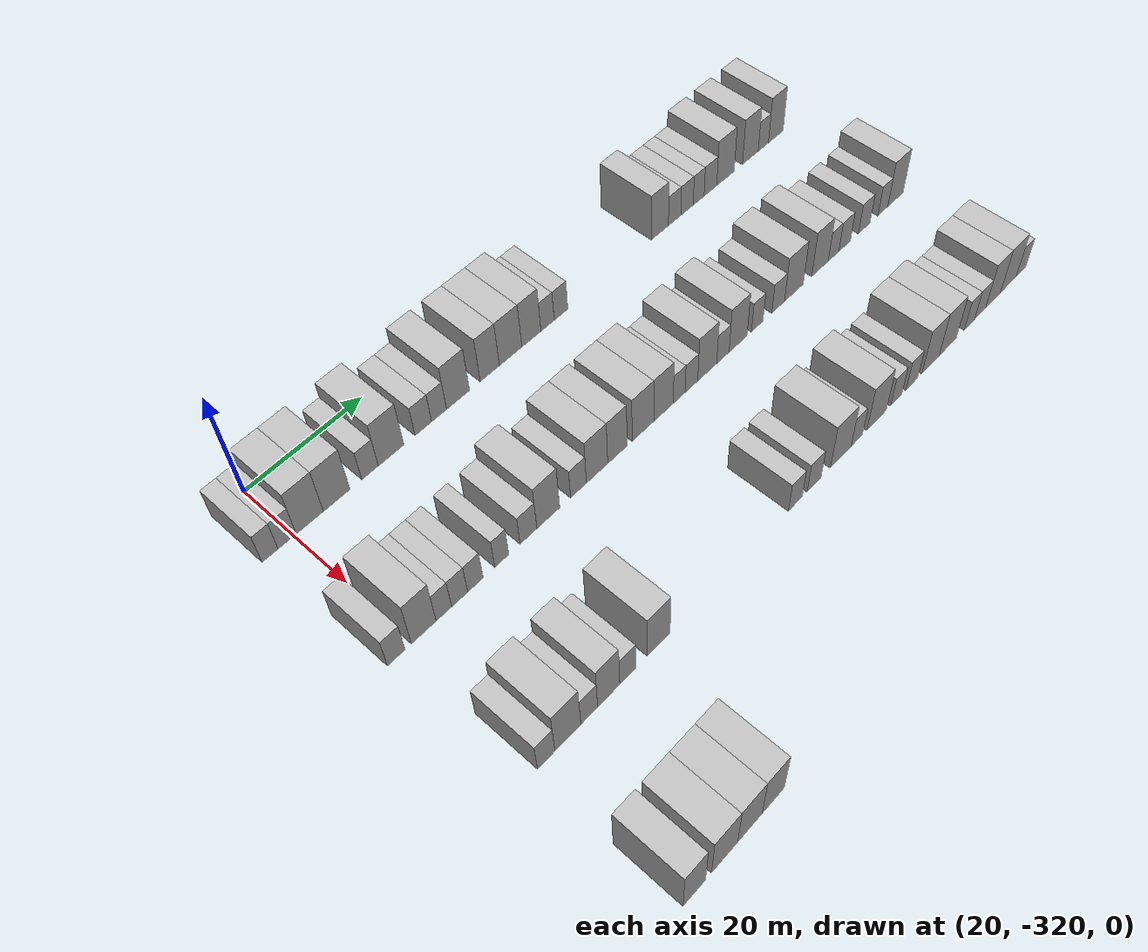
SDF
<sdf version="1.6">
 <world name="default">
  <model name="building_15">
   <static>1</static>
   <pose>25.0000 -323.8361 0 0.000000 0.000000 0.000000</pose>
   <link name="link">
    <pose>0 0 3.00 0 0 0</pose>
    <collision name="collision"><geometry><box><size>10.0000 2.5268 6.0000</size></box></geometry></collision>
    <visual name="visual">
     <cast_shadows>0</cast_shadows>
     <geometry><box><size>10.0000 2.5268 6.0000</size></box></geometry>
     <material>
      <script>
       <uri>model://HANNAS_wall/materials/scripts</uri>
       <uri>model://HANNAS_wall/materials/textures</uri>
       <name>vrc/HANNAS_wall</name>
      </script>
     </material>
    </visual>
   </link>
  </model>
  <model name="building_16">
   <static>1</static>
   <pose>25.0000 -321.1197 0 0.000000 0.000000 0.000000</pose>
   <link name="link">
    <pose>0 0 3.00 0 0 0</pose>
    <collision name="collision"><geometry><box><size>10.0000 2.9060 6.0000</size></box></geometry></collision>
    <visual name="visual">
     <cast_shadows>0</cast_shadows>
     <geometry><box><size>10.0000 2.9060 6.0000</size></box></geometry>
     <material>
      <script>
       <uri>model://HANNAS_wall/materials/scripts</uri>
       <uri>model://HANNAS_wall/materials/textures</uri>
       <name>vrc/HANNAS_wall</name>
      </script>
     </material>
    </visual>
   </link>
  </model>
  <model name="building_17">
   <static>1</static>
   <pose>25.0000 -317.4488 0 0.000000 0.000000 0.000000</pose>
   <link name="link">
    <pose>0 0 4.50 0 0 0</pose>
    <collision name="collision"><geometry><box><size>10.0000 4.4359 9.0000</size></box></geometry></collision>
    <visual name="visual">
     <cast_shadows>0</cast_shadows>
     <geometry><box><size>10.0000 4.4359 9.0000</size></box></geometry>
     <material>
      <script>
       <uri>model://HANNAS_wall/materials/scripts</uri>
       <uri>model://HANNAS_wall/materials/textures</uri>
       <name>vrc/HANNAS_wall</name>
      </script>
     </material>
    </visual>
   </link>
  </model>
  <model name="building_18">
   <static>1</static>
   <pose>25.0000 -313.0124 0 0.000000 0.000000 0.000000</pose>
   <link name="link">
    <pose>0 0 4.50 0 0 0</pose>
    <collision name="collision"><geometry><box><size>10.0000 4.4369 9.0000</size></box></geometry></collision>
    <visual name="visual">
     <cast_shadows>0</cast_shadows>
     <geometry><box><size>10.0000 4.4369 9.0000</size></box></geometry>
     <material>
      <script>
       <uri>model://HANNAS_wall/materials/scripts</uri>
       <uri>model://HANNAS_wall/materials/textures</uri>
       <name>vrc/HANNAS_wall</name>
      </script>
     </material>
    </visual>
   </link>
  </model>
  <model name="building_19">
   <static>1</static>
   <pose>25.0000 -307.3761 0 0.000000 0.000000 0.000000</pose>
   <link name="link">
    <pose>0 0 3.00 0 0 0</pose>
    <collision name="collision"><geometry><box><size>10.0000 2.8357 6.0000</size></box></geometry></collision>
    <visual name="visual">
     <cast_shadows>0</cast_shadows>
     <geometry><box><size>10.0000 2.8357 6.0000</size></box></geometry>
     <material>
      <script>
       <uri>model://HANNAS_wall/materials/scripts</uri>
       <uri>model://HANNAS_wall/materials/textures</uri>
       <name>vrc/HANNAS_wall</name>
      </script>
     </material>
    </visual>
   </link>
  </model>
  <model name="building_20">
   <static>1</static>
   <pose>25.0000 -303.7380 0 0.000000 0.000000 0.000000</pose>
   <link name="link">
    <pose>0 0 4.50 0 0 0</pose>
    <collision name="collision"><geometry><box><size>10.0000 4.4406 9.0000</size></box></geometry></collision>
    <visual name="visual">
     <cast_shadows>0</cast_shadows>
     <geometry><box><size>10.0000 4.4406 9.0000</size></box></geometry>
     <material>
      <script>
       <uri>model://HANNAS_wall/materials/scripts</uri>
       <uri>model://HANNAS_wall/materials/textures</uri>
       <name>vrc/HANNAS_wall</name>
      </script>
     </material>
    </visual>
   </link>
  </model>
  <model name="building_21">
   <static>1</static>
   <pose>25.0000 -298.0272 0 0.000000 0.000000 0.000000</pose>
   <link name="link">
    <pose>0 0 3.00 0 0 0</pose>
    <collision name="collision"><geometry><box><size>10.0000 2.9811 6.0000</size></box></geometry></collision>
    <visual name="visual">
     <cast_shadows>0</cast_shadows>
     <geometry><box><size>10.0000 2.9811 6.0000</size></box></geometry>
     <material>
      <script>
       <uri>model://HANNAS_wall/materials/scripts</uri>
       <uri>model://HANNAS_wall/materials/textures</uri>
       <name>vrc/HANNAS_wall</name>
      </script>
     </material>
    </visual>
   </link>
  </model>
  <model name="building_22">
   <static>1</static>
   <pose>25.0000 -295.1833 0 0.000000 0.000000 0.000000</pose>
   <link name="link">
    <pose>0 0 3.00 0 0 0</pose>
    <collision name="collision"><geometry><box><size>10.0000 2.7067 6.0000</size></box></geometry></collision>
    <visual name="visual">
     <cast_shadows>0</cast_shadows>
     <geometry><box><size>10.0000 2.7067 6.0000</size></box></geometry>
     <material>
      <script>
       <uri>model://HANNAS_wall/materials/scripts</uri>
       <uri>model://HANNAS_wall/materials/textures</uri>
       <name>vrc/HANNAS_wall</name>
      </script>
     </material>
    </visual>
   </link>
  </model>
  <model name="building_23">
   <static>1</static>
   <pose>25.0000 -291.6937 0 0.000000 0.000000 0.000000</pose>
   <link name="link">
    <pose>0 0 4.50 0 0 0</pose>
    <collision name="collision"><geometry><box><size>10.0000 4.2725 9.0000</size></box></geometry></collision>
    <visual name="visual">
     <cast_shadows>0</cast_shadows>
     <geometry><box><size>10.0000 4.2725 9.0000</size></box></geometry>
     <material>
      <script>
       <uri>model://HANNAS_wall/materials/scripts</uri>
       <uri>model://HANNAS_wall/materials/textures</uri>
       <name>vrc/HANNAS_wall</name>
      </script>
     </material>
    </visual>
   </link>
  </model>
  <model name="building_24">
   <static>1</static>
   <pose>25.0000 -285.7296 0 0.000000 0.000000 0.000000</pose>
   <link name="link">
    <pose>0 0 4.50 0 0 0</pose>
    <collision name="collision"><geometry><box><size>10.0000 3.6557 9.0000</size></box></geometry></collision>
    <visual name="visual">
     <cast_shadows>0</cast_shadows>
     <geometry><box><size>10.0000 3.6557 9.0000</size></box></geometry>
     <material>
      <script>
       <uri>model://HANNAS_wall/materials/scripts</uri>
       <uri>model://HANNAS_wall/materials/textures</uri>
       <name>vrc/HANNAS_wall</name>
      </script>
     </material>
    </visual>
   </link>
  </model>
  <model name="building_25">
   <static>1</static>
   <pose>25.0000 -281.7193 0 0.000000 0.000000 0.000000</pose>
   <link name="link">
    <pose>0 0 4.50 0 0 0</pose>
    <collision name="collision"><geometry><box><size>10.0000 4.3651 9.0000</size></box></geometry></collision>
    <visual name="visual">
     <cast_shadows>0</cast_shadows>
     <geometry><box><size>10.0000 4.3651 9.0000</size></box></geometry>
     <material>
      <script>
       <uri>model://HANNAS_wall/materials/scripts</uri>
       <uri>model://HANNAS_wall/materials/textures</uri>
       <name>vrc/HANNAS_wall</name>
      </script>
     </material>
    </visual>
   </link>
  </model>
  <model name="building_26">
   <static>1</static>
   <pose>25.0000 -277.6539 0 0.000000 0.000000 0.000000</pose>
   <link name="link">
    <pose>0 0 4.50 0 0 0</pose>
    <collision name="collision"><geometry><box><size>10.0000 3.7657 9.0000</size></box></geometry></collision>
    <visual name="visual">
     <cast_shadows>0</cast_shadows>
     <geometry><box><size>10.0000 3.7657 9.0000</size></box></geometry>
     <material>
      <script>
       <uri>model://HANNAS_wall/materials/scripts</uri>
       <uri>model://HANNAS_wall/materials/textures</uri>
       <name>vrc/HANNAS_wall</name>
      </script>
     </material>
    </visual>
   </link>
  </model>
  <model name="building_27">
   <static>1</static>
   <pose>25.0000 -274.4443 0 0.000000 0.000000 0.000000</pose>
   <link name="link">
    <pose>0 0 3.00 0 0 0</pose>
    <collision name="collision"><geometry><box><size>10.0000 2.6534 6.0000</size></box></geometry></collision>
    <visual name="visual">
     <cast_shadows>0</cast_shadows>
     <geometry><box><size>10.0000 2.6534 6.0000</size></box></geometry>
     <material>
      <script>
       <uri>model://HANNAS_wall/materials/scripts</uri>
       <uri>model://HANNAS_wall/materials/textures</uri>
       <name>vrc/HANNAS_wall</name>
      </script>
     </material>
    </visual>
   </link>
  </model>
  <model name="building_28">
   <static>1</static>
   <pose>25.0000 -271.7349 0 0.000000 0.000000 0.000000</pose>
   <link name="link">
    <pose>0 0 3.00 0 0 0</pose>
    <collision name="collision"><geometry><box><size>10.0000 2.7654 6.0000</size></box></geometry></collision>
    <visual name="visual">
     <cast_shadows>0</cast_shadows>
     <geometry><box><size>10.0000 2.7654 6.0000</size></box></geometry>
     <material>
      <script>
       <uri>model://HANNAS_wall/materials/scripts</uri>
       <uri>model://HANNAS_wall/materials/textures</uri>
       <name>vrc/HANNAS_wall</name>
      </script>
     </material>
    </visual>
   </link>
  </model>
  <model name="building_29">
   <static>1</static>
   <pose>25.0000 -250.6483 0 0.000000 0.000000 0.000000</pose>
   <link name="link">
    <pose>0 0 4.50 0 0 0</pose>
    <collision name="collision"><geometry><box><size>10.0000 3.8026 9.0000</size></box></geometry></collision>
    <visual name="visual">
     <cast_shadows>0</cast_shadows>
     <geometry><box><size>10.0000 3.8026 9.0000</size></box></geometry>
     <material>
      <script>
       <uri>model://HANNAS_wall/materials/scripts</uri>
       <uri>model://HANNAS_wall/materials/textures</uri>
       <name>vrc/HANNAS_wall</name>
      </script>
     </material>
    </visual>
   </link>
  </model>
  <model name="building_30">
   <static>1</static>
   <pose>25.0000 -247.3433 0 0.000000 0.000000 0.000000</pose>
   <link name="link">
    <pose>0 0 3.00 0 0 0</pose>
    <collision name="collision"><geometry><box><size>10.0000 2.8074 6.0000</size></box></geometry></collision>
    <visual name="visual">
     <cast_shadows>0</cast_shadows>
     <geometry><box><size>10.0000 2.8074 6.0000</size></box></geometry>
     <material>
      <script>
       <uri>model://HANNAS_wall/materials/scripts</uri>
       <uri>model://HANNAS_wall/materials/textures</uri>
       <name>vrc/HANNAS_wall</name>
      </script>
     </material>
    </visual>
   </link>
  </model>
  <model name="building_31">
   <static>1</static>
   <pose>25.0000 -244.5108 0 0.000000 0.000000 0.000000</pose>
   <link name="link">
    <pose>0 0 3.00 0 0 0</pose>
    <collision name="collision"><geometry><box><size>10.0000 2.8575 6.0000</size></box></geometry></collision>
    <visual name="visual">
     <cast_shadows>0</cast_shadows>
     <geometry><box><size>10.0000 2.8575 6.0000</size></box></geometry>
     <material>
      <script>
       <uri>model://HANNAS_wall/materials/scripts</uri>
       <uri>model://HANNAS_wall/materials/textures</uri>
       <name>vrc/HANNAS_wall</name>
      </script>
     </material>
    </visual>
   </link>
  </model>
  <model name="building_32">
   <static>1</static>
   <pose>25.0000 -241.8148 0 0.000000 0.000000 0.000000</pose>
   <link name="link">
    <pose>0 0 3.00 0 0 0</pose>
    <collision name="collision"><geometry><box><size>10.0000 2.5343 6.0000</size></box></geometry></collision>
    <visual name="visual">
     <cast_shadows>0</cast_shadows>
     <geometry><box><size>10.0000 2.5343 6.0000</size></box></geometry>
     <material>
      <script>
       <uri>model://HANNAS_wall/materials/scripts</uri>
       <uri>model://HANNAS_wall/materials/textures</uri>
       <name>vrc/HANNAS_wall</name>
      </script>
     </material>
    </visual>
   </link>
  </model>
  <model name="building_33">
   <static>1</static>
   <pose>25.0000 -239.0710 0 0.000000 0.000000 0.000000</pose>
   <link name="link">
    <pose>0 0 3.00 0 0 0</pose>
    <collision name="collision"><geometry><box><size>10.0000 2.9532 6.0000</size></box></geometry></collision>
    <visual name="visual">
     <cast_shadows>0</cast_shadows>
     <geometry><box><size>10.0000 2.9532 6.0000</size></box></geometry>
     <material>
      <script>
       <uri>model://HANNAS_wall/materials/scripts</uri>
       <uri>model://HANNAS_wall/materials/textures</uri>
       <name>vrc/HANNAS_wall</name>
      </script>
     </material>
    </visual>
   </link>
  </model>
  <model name="building_34">
   <static>1</static>
   <pose>25.0000 -235.5014 0 0.000000 0.000000 0.000000</pose>
   <link name="link">
    <pose>0 0 4.50 0 0 0</pose>
    <collision name="collision"><geometry><box><size>10.0000 4.1860 9.0000</size></box></geometry></collision>
    <visual name="visual">
     <cast_shadows>0</cast_shadows>
     <geometry><box><size>10.0000 4.1860 9.0000</size></box></geometry>
     <material>
      <script>
       <uri>model://HANNAS_wall/materials/scripts</uri>
       <uri>model://HANNAS_wall/materials/textures</uri>
       <name>vrc/HANNAS_wall</name>
      </script>
     </material>
    </visual>
   </link>
  </model>
  <model name="building_35">
   <static>1</static>
   <pose>25.0000 -229.4936 0 0.000000 0.000000 0.000000</pose>
   <link name="link">
    <pose>0 0 4.50 0 0 0</pose>
    <collision name="collision"><geometry><box><size>10.0000 3.8298 9.0000</size></box></geometry></collision>
    <visual name="visual">
     <cast_shadows>0</cast_shadows>
     <geometry><box><size>10.0000 3.8298 9.0000</size></box></geometry>
     <material>
      <script>
       <uri>model://HANNAS_wall/materials/scripts</uri>
       <uri>model://HANNAS_wall/materials/textures</uri>
       <name>vrc/HANNAS_wall</name>
      </script>
     </material>
    </visual>
   </link>
  </model>
  <model name="building_36">
   <static>1</static>
   <pose>25.0000 -226.3007 0 0.000000 0.000000 0.000000</pose>
   <link name="link">
    <pose>0 0 3.00 0 0 0</pose>
    <collision name="collision"><geometry><box><size>10.0000 2.5559 6.0000</size></box></geometry></collision>
    <visual name="visual">
     <cast_shadows>0</cast_shadows>
     <geometry><box><size>10.0000 2.5559 6.0000</size></box></geometry>
     <material>
      <script>
       <uri>model://HANNAS_wall/materials/scripts</uri>
       <uri>model://HANNAS_wall/materials/textures</uri>
       <name>vrc/HANNAS_wall</name>
      </script>
     </material>
    </visual>
   </link>
  </model>
  <model name="building_37">
   <static>1</static>
   <pose>25.0000 -223.1978 0 0.000000 0.000000 0.000000</pose>
   <link name="link">
    <pose>0 0 4.50 0 0 0</pose>
    <collision name="collision"><geometry><box><size>10.0000 3.6500 9.0000</size></box></geometry></collision>
    <visual name="visual">
     <cast_shadows>0</cast_shadows>
     <geometry><box><size>10.0000 3.6500 9.0000</size></box></geometry>
     <material>
      <script>
       <uri>model://HANNAS_wall/materials/scripts</uri>
       <uri>model://HANNAS_wall/materials/textures</uri>
       <name>vrc/HANNAS_wall</name>
      </script>
     </material>
    </visual>
   </link>
  </model>
  <model name="building_199">
   <static>1</static>
   <pose>47.0000 -322.7695 0 0.000000 0.000000 0.000000</pose>
   <link name="link">
    <pose>0 0 3.00 0 0 0</pose>
    <collision name="collision"><geometry><box><size>10.0000 2.8136 6.0000</size></box></geometry></collision>
    <visual name="visual">
     <cast_shadows>0</cast_shadows>
     <geometry><box><size>10.0000 2.8136 6.0000</size></box></geometry>
     <material>
      <script>
       <uri>model://HANNAS_wall/materials/scripts</uri>
       <uri>model://HANNAS_wall/materials/textures</uri>
       <name>vrc/HANNAS_wall</name>
      </script>
     </material>
    </visual>
   </link>
  </model>
  <model name="building_200">
   <static>1</static>
   <pose>47.0000 -318.3534 0 0.000000 0.000000 0.000000</pose>
   <link name="link">
    <pose>0 0 4.50 0 0 0</pose>
    <collision name="collision"><geometry><box><size>10.0000 4.0186 9.0000</size></box></geometry></collision>
    <visual name="visual">
     <cast_shadows>0</cast_shadows>
     <geometry><box><size>10.0000 4.0186 9.0000</size></box></geometry>
     <material>
      <script>
       <uri>model://HANNAS_wall/materials/scripts</uri>
       <uri>model://HANNAS_wall/materials/textures</uri>
       <name>vrc/HANNAS_wall</name>
      </script>
     </material>
    </visual>
   </link>
  </model>
  <model name="building_201">
   <static>1</static>
   <pose>47.0000 -315.0642 0 0.000000 0.000000 0.000000</pose>
   <link name="link">
    <pose>0 0 3.00 0 0 0</pose>
    <collision name="collision"><geometry><box><size>10.0000 2.5597 6.0000</size></box></geometry></collision>
    <visual name="visual">
     <cast_shadows>0</cast_shadows>
     <geometry><box><size>10.0000 2.5597 6.0000</size></box></geometry>
     <material>
      <script>
       <uri>model://HANNAS_wall/materials/scripts</uri>
       <uri>model://HANNAS_wall/materials/textures</uri>
       <name>vrc/HANNAS_wall</name>
      </script>
     </material>
    </visual>
   </link>
  </model>
  <model name="building_202">
   <static>1</static>
   <pose>47.0000 -312.4385 0 0.000000 0.000000 0.000000</pose>
   <link name="link">
    <pose>0 0 3.00 0 0 0</pose>
    <collision name="collision"><geometry><box><size>10.0000 2.6918 6.0000</size></box></geometry></collision>
    <visual name="visual">
     <cast_shadows>0</cast_shadows>
     <geometry><box><size>10.0000 2.6918 6.0000</size></box></geometry>
     <material>
      <script>
       <uri>model://HANNAS_wall/materials/scripts</uri>
       <uri>model://HANNAS_wall/materials/textures</uri>
       <name>vrc/HANNAS_wall</name>
      </script>
     </material>
    </visual>
   </link>
  </model>
  <model name="building_203">
   <static>1</static>
   <pose>47.0000 -309.7807 0 0.000000 0.000000 0.000000</pose>
   <link name="link">
    <pose>0 0 3.00 0 0 0</pose>
    <collision name="collision"><geometry><box><size>10.0000 2.6238 6.0000</size></box></geometry></collision>
    <visual name="visual">
     <cast_shadows>0</cast_shadows>
     <geometry><box><size>10.0000 2.6238 6.0000</size></box></geometry>
     <material>
      <script>
       <uri>model://HANNAS_wall/materials/scripts</uri>
       <uri>model://HANNAS_wall/materials/textures</uri>
       <name>vrc/HANNAS_wall</name>
      </script>
     </material>
    </visual>
   </link>
  </model>
  <model name="building_204">
   <static>1</static>
   <pose>47.0000 -305.2591 0 0.000000 0.000000 0.000000</pose>
   <link name="link">
    <pose>0 0 3.00 0 0 0</pose>
    <collision name="collision"><geometry><box><size>10.0000 2.4195 6.0000</size></box></geometry></collision>
    <visual name="visual">
     <cast_shadows>0</cast_shadows>
     <geometry><box><size>10.0000 2.4195 6.0000</size></box></geometry>
     <material>
      <script>
       <uri>model://HANNAS_wall/materials/scripts</uri>
       <uri>model://HANNAS_wall/materials/textures</uri>
       <name>vrc/HANNAS_wall</name>
      </script>
     </material>
    </visual>
   </link>
  </model>
  <model name="building_205">
   <static>1</static>
   <pose>47.0000 -300.5561 0 0.000000 0.000000 0.000000</pose>
   <link name="link">
    <pose>0 0 3.00 0 0 0</pose>
    <collision name="collision"><geometry><box><size>10.0000 2.9864 6.0000</size></box></geometry></collision>
    <visual name="visual">
     <cast_shadows>0</cast_shadows>
     <geometry><box><size>10.0000 2.9864 6.0000</size></box></geometry>
     <material>
      <script>
       <uri>model://HANNAS_wall/materials/scripts</uri>
       <uri>model://HANNAS_wall/materials/textures</uri>
       <name>vrc/HANNAS_wall</name>
      </script>
     </material>
    </visual>
   </link>
  </model>
  <model name="building_206">
   <static>1</static>
   <pose>47.0000 -296.9911 0 0.000000 0.000000 0.000000</pose>
   <link name="link">
    <pose>0 0 4.50 0 0 0</pose>
    <collision name="collision"><geometry><box><size>10.0000 4.1438 9.0000</size></box></geometry></collision>
    <visual name="visual">
     <cast_shadows>0</cast_shadows>
     <geometry><box><size>10.0000 4.1438 9.0000</size></box></geometry>
     <material>
      <script>
       <uri>model://HANNAS_wall/materials/scripts</uri>
       <uri>model://HANNAS_wall/materials/textures</uri>
       <name>vrc/HANNAS_wall</name>
      </script>
     </material>
    </visual>
   </link>
  </model>
  <model name="building_207">
   <static>1</static>
   <pose>47.0000 -291.4480 0 0.000000 0.000000 0.000000</pose>
   <link name="link">
    <pose>0 0 3.00 0 0 0</pose>
    <collision name="collision"><geometry><box><size>10.0000 2.9424 6.0000</size></box></geometry></collision>
    <visual name="visual">
     <cast_shadows>0</cast_shadows>
     <geometry><box><size>10.0000 2.9424 6.0000</size></box></geometry>
     <material>
      <script>
       <uri>model://HANNAS_wall/materials/scripts</uri>
       <uri>model://HANNAS_wall/materials/textures</uri>
       <name>vrc/HANNAS_wall</name>
      </script>
     </material>
    </visual>
   </link>
  </model>
  <model name="building_208">
   <static>1</static>
   <pose>47.0000 -287.9457 0 0.000000 0.000000 0.000000</pose>
   <link name="link">
    <pose>0 0 4.50 0 0 0</pose>
    <collision name="collision"><geometry><box><size>10.0000 4.0623 9.0000</size></box></geometry></collision>
    <visual name="visual">
     <cast_shadows>0</cast_shadows>
     <geometry><box><size>10.0000 4.0623 9.0000</size></box></geometry>
     <material>
      <script>
       <uri>model://HANNAS_wall/materials/scripts</uri>
       <uri>model://HANNAS_wall/materials/textures</uri>
       <name>vrc/HANNAS_wall</name>
      </script>
     </material>
    </visual>
   </link>
  </model>
  <model name="building_209">
   <static>1</static>
   <pose>47.0000 -284.0414 0 0.000000 0.000000 0.000000</pose>
   <link name="link">
    <pose>0 0 4.50 0 0 0</pose>
    <collision name="collision"><geometry><box><size>10.0000 3.7462 9.0000</size></box></geometry></collision>
    <visual name="visual">
     <cast_shadows>0</cast_shadows>
     <geometry><box><size>10.0000 3.7462 9.0000</size></box></geometry>
     <material>
      <script>
       <uri>model://HANNAS_wall/materials/scripts</uri>
       <uri>model://HANNAS_wall/materials/textures</uri>
       <name>vrc/HANNAS_wall</name>
      </script>
     </material>
    </visual>
   </link>
  </model>
  <model name="building_210">
   <static>1</static>
   <pose>47.0000 -279.0364 0 0.000000 0.000000 0.000000</pose>
   <link name="link">
    <pose>0 0 4.50 0 0 0</pose>
    <collision name="collision"><geometry><box><size>10.0000 4.2638 9.0000</size></box></geometry></collision>
    <visual name="visual">
     <cast_shadows>0</cast_shadows>
     <geometry><box><size>10.0000 4.2638 9.0000</size></box></geometry>
     <material>
      <script>
       <uri>model://HANNAS_wall/materials/scripts</uri>
       <uri>model://HANNAS_wall/materials/textures</uri>
       <name>vrc/HANNAS_wall</name>
      </script>
     </material>
    </visual>
   </link>
  </model>
  <model name="building_211">
   <static>1</static>
   <pose>47.0000 -274.9404 0 0.000000 0.000000 0.000000</pose>
   <link name="link">
    <pose>0 0 4.50 0 0 0</pose>
    <collision name="collision"><geometry><box><size>10.0000 3.9282 9.0000</size></box></geometry></collision>
    <visual name="visual">
     <cast_shadows>0</cast_shadows>
     <geometry><box><size>10.0000 3.9282 9.0000</size></box></geometry>
     <material>
      <script>
       <uri>model://HANNAS_wall/materials/scripts</uri>
       <uri>model://HANNAS_wall/materials/textures</uri>
       <name>vrc/HANNAS_wall</name>
      </script>
     </material>
    </visual>
   </link>
  </model>
  <model name="building_212">
   <static>1</static>
   <pose>47.0000 -271.7515 0 0.000000 0.000000 0.000000</pose>
   <link name="link">
    <pose>0 0 3.00 0 0 0</pose>
    <collision name="collision"><geometry><box><size>10.0000 2.4497 6.0000</size></box></geometry></collision>
    <visual name="visual">
     <cast_shadows>0</cast_shadows>
     <geometry><box><size>10.0000 2.4497 6.0000</size></box></geometry>
     <material>
      <script>
       <uri>model://HANNAS_wall/materials/scripts</uri>
       <uri>model://HANNAS_wall/materials/textures</uri>
       <name>vrc/HANNAS_wall</name>
      </script>
     </material>
    </visual>
   </link>
  </model>
  <model name="building_213">
   <static>1</static>
   <pose>47.0000 -269.2143 0 0.000000 0.000000 0.000000</pose>
   <link name="link">
    <pose>0 0 3.00 0 0 0</pose>
    <collision name="collision"><geometry><box><size>10.0000 2.6246 6.0000</size></box></geometry></collision>
    <visual name="visual">
     <cast_shadows>0</cast_shadows>
     <geometry><box><size>10.0000 2.6246 6.0000</size></box></geometry>
     <material>
      <script>
       <uri>model://HANNAS_wall/materials/scripts</uri>
       <uri>model://HANNAS_wall/materials/textures</uri>
       <name>vrc/HANNAS_wall</name>
      </script>
     </material>
    </visual>
   </link>
  </model>
  <model name="building_214">
   <static>1</static>
   <pose>47.0000 -265.9032 0 0.000000 0.000000 0.000000</pose>
   <link name="link">
    <pose>0 0 4.50 0 0 0</pose>
    <collision name="collision"><geometry><box><size>10.0000 3.9975 9.0000</size></box></geometry></collision>
    <visual name="visual">
     <cast_shadows>0</cast_shadows>
     <geometry><box><size>10.0000 3.9975 9.0000</size></box></geometry>
     <material>
      <script>
       <uri>model://HANNAS_wall/materials/scripts</uri>
       <uri>model://HANNAS_wall/materials/textures</uri>
       <name>vrc/HANNAS_wall</name>
      </script>
     </material>
    </visual>
   </link>
  </model>
  <model name="building_215">
   <static>1</static>
   <pose>47.0000 -262.5738 0 0.000000 0.000000 0.000000</pose>
   <link name="link">
    <pose>0 0 3.00 0 0 0</pose>
    <collision name="collision"><geometry><box><size>10.0000 2.6614 6.0000</size></box></geometry></collision>
    <visual name="visual">
     <cast_shadows>0</cast_shadows>
     <geometry><box><size>10.0000 2.6614 6.0000</size></box></geometry>
     <material>
      <script>
       <uri>model://HANNAS_wall/materials/scripts</uri>
       <uri>model://HANNAS_wall/materials/textures</uri>
       <name>vrc/HANNAS_wall</name>
      </script>
     </material>
    </visual>
   </link>
  </model>
  <model name="building_216">
   <static>1</static>
   <pose>47.0000 -259.2860 0 0.000000 0.000000 0.000000</pose>
   <link name="link">
    <pose>0 0 4.50 0 0 0</pose>
    <collision name="collision"><geometry><box><size>10.0000 3.9142 9.0000</size></box></geometry></collision>
    <visual name="visual">
     <cast_shadows>0</cast_shadows>
     <geometry><box><size>10.0000 3.9142 9.0000</size></box></geometry>
     <material>
      <script>
       <uri>model://HANNAS_wall/materials/scripts</uri>
       <uri>model://HANNAS_wall/materials/textures</uri>
       <name>vrc/HANNAS_wall</name>
      </script>
     </material>
    </visual>
   </link>
  </model>
  <model name="building_217">
   <static>1</static>
   <pose>47.0000 -255.0571 0 0.000000 0.000000 0.000000</pose>
   <link name="link">
    <pose>0 0 3.00 0 0 0</pose>
    <collision name="collision"><geometry><box><size>10.0000 2.5437 6.0000</size></box></geometry></collision>
    <visual name="visual">
     <cast_shadows>0</cast_shadows>
     <geometry><box><size>10.0000 2.5437 6.0000</size></box></geometry>
     <material>
      <script>
       <uri>model://HANNAS_wall/materials/scripts</uri>
       <uri>model://HANNAS_wall/materials/textures</uri>
       <name>vrc/HANNAS_wall</name>
      </script>
     </material>
    </visual>
   </link>
  </model>
  <model name="building_218">
   <static>1</static>
   <pose>47.0000 -250.3554 0 0.000000 0.000000 0.000000</pose>
   <link name="link">
    <pose>0 0 3.00 0 0 0</pose>
    <collision name="collision"><geometry><box><size>10.0000 2.8597 6.0000</size></box></geometry></collision>
    <visual name="visual">
     <cast_shadows>0</cast_shadows>
     <geometry><box><size>10.0000 2.8597 6.0000</size></box></geometry>
     <material>
      <script>
       <uri>model://HANNAS_wall/materials/scripts</uri>
       <uri>model://HANNAS_wall/materials/textures</uri>
       <name>vrc/HANNAS_wall</name>
      </script>
     </material>
    </visual>
   </link>
  </model>
  <model name="building_219">
   <static>1</static>
   <pose>47.0000 -246.7512 0 0.000000 0.000000 0.000000</pose>
   <link name="link">
    <pose>0 0 4.50 0 0 0</pose>
    <collision name="collision"><geometry><box><size>10.0000 4.3487 9.0000</size></box></geometry></collision>
    <visual name="visual">
     <cast_shadows>0</cast_shadows>
     <geometry><box><size>10.0000 4.3487 9.0000</size></box></geometry>
     <material>
      <script>
       <uri>model://HANNAS_wall/materials/scripts</uri>
       <uri>model://HANNAS_wall/materials/textures</uri>
       <name>vrc/HANNAS_wall</name>
      </script>
     </material>
    </visual>
   </link>
  </model>
  <model name="building_220">
   <static>1</static>
   <pose>47.0000 -240.6304 0 0.000000 0.000000 0.000000</pose>
   <link name="link">
    <pose>0 0 4.50 0 0 0</pose>
    <collision name="collision"><geometry><box><size>10.0000 3.8928 9.0000</size></box></geometry></collision>
    <visual name="visual">
     <cast_shadows>0</cast_shadows>
     <geometry><box><size>10.0000 3.8928 9.0000</size></box></geometry>
     <material>
      <script>
       <uri>model://HANNAS_wall/materials/scripts</uri>
       <uri>model://HANNAS_wall/materials/textures</uri>
       <name>vrc/HANNAS_wall</name>
      </script>
     </material>
    </visual>
   </link>
  </model>
  <model name="building_221">
   <static>1</static>
   <pose>47.0000 -237.4080 0 0.000000 0.000000 0.000000</pose>
   <link name="link">
    <pose>0 0 3.00 0 0 0</pose>
    <collision name="collision"><geometry><box><size>10.0000 2.5520 6.0000</size></box></geometry></collision>
    <visual name="visual">
     <cast_shadows>0</cast_shadows>
     <geometry><box><size>10.0000 2.5520 6.0000</size></box></geometry>
     <material>
      <script>
       <uri>model://HANNAS_wall/materials/scripts</uri>
       <uri>model://HANNAS_wall/materials/textures</uri>
       <name>vrc/HANNAS_wall</name>
      </script>
     </material>
    </visual>
   </link>
  </model>
  <model name="building_222">
   <static>1</static>
   <pose>47.0000 -234.7211 0 0.000000 0.000000 0.000000</pose>
   <link name="link">
    <pose>0 0 3.00 0 0 0</pose>
    <collision name="collision"><geometry><box><size>10.0000 2.8218 6.0000</size></box></geometry></collision>
    <visual name="visual">
     <cast_shadows>0</cast_shadows>
     <geometry><box><size>10.0000 2.8218 6.0000</size></box></geometry>
     <material>
      <script>
       <uri>model://HANNAS_wall/materials/scripts</uri>
       <uri>model://HANNAS_wall/materials/textures</uri>
       <name>vrc/HANNAS_wall</name>
      </script>
     </material>
    </visual>
   </link>
  </model>
  <model name="building_223">
   <static>1</static>
   <pose>47.0000 -229.8769 0 0.000000 0.000000 0.000000</pose>
   <link name="link">
    <pose>0 0 3.00 0 0 0</pose>
    <collision name="collision"><geometry><box><size>10.0000 2.8665 6.0000</size></box></geometry></collision>
    <visual name="visual">
     <cast_shadows>0</cast_shadows>
     <geometry><box><size>10.0000 2.8665 6.0000</size></box></geometry>
     <material>
      <script>
       <uri>model://HANNAS_wall/materials/scripts</uri>
       <uri>model://HANNAS_wall/materials/textures</uri>
       <name>vrc/HANNAS_wall</name>
      </script>
     </material>
    </visual>
   </link>
  </model>
  <model name="building_224">
   <static>1</static>
   <pose>47.0000 -225.1973 0 0.000000 0.000000 0.000000</pose>
   <link name="link">
    <pose>0 0 3.00 0 0 0</pose>
    <collision name="collision"><geometry><box><size>10.0000 2.4928 6.0000</size></box></geometry></collision>
    <visual name="visual">
     <cast_shadows>0</cast_shadows>
     <geometry><box><size>10.0000 2.4928 6.0000</size></box></geometry>
     <material>
      <script>
       <uri>model://HANNAS_wall/materials/scripts</uri>
       <uri>model://HANNAS_wall/materials/textures</uri>
       <name>vrc/HANNAS_wall</name>
      </script>
     </material>
    </visual>
   </link>
  </model>
  <model name="building_225">
   <static>1</static>
   <pose>47.0000 -221.9797 0 0.000000 0.000000 0.000000</pose>
   <link name="link">
    <pose>0 0 4.50 0 0 0</pose>
    <collision name="collision"><geometry><box><size>10.0000 3.9425 9.0000</size></box></geometry></collision>
    <visual name="visual">
     <cast_shadows>0</cast_shadows>
     <geometry><box><size>10.0000 3.9425 9.0000</size></box></geometry>
     <material>
      <script>
       <uri>model://HANNAS_wall/materials/scripts</uri>
       <uri>model://HANNAS_wall/materials/textures</uri>
       <name>vrc/HANNAS_wall</name>
      </script>
     </material>
    </visual>
   </link>
  </model>
  <model name="building_384">
   <static>1</static>
   <pose>69.0000 -320.0613 0 0.000000 0.000000 0.000000</pose>
   <link name="link">
    <pose>0 0 3.00 0 0 0</pose>
    <collision name="collision"><geometry><box><size>10.0000 2.8058 6.0000</size></box></geometry></collision>
    <visual name="visual">
     <cast_shadows>0</cast_shadows>
     <geometry><box><size>10.0000 2.8058 6.0000</size></box></geometry>
     <material>
      <script>
       <uri>model://HANNAS_wall/materials/scripts</uri>
       <uri>model://HANNAS_wall/materials/textures</uri>
       <name>vrc/HANNAS_wall</name>
      </script>
     </material>
    </visual>
   </link>
  </model>
  <model name="building_385">
   <static>1</static>
   <pose>69.0000 -316.5178 0 0.000000 0.000000 0.000000</pose>
   <link name="link">
    <pose>0 0 4.50 0 0 0</pose>
    <collision name="collision"><geometry><box><size>10.0000 4.2813 9.0000</size></box></geometry></collision>
    <visual name="visual">
     <cast_shadows>0</cast_shadows>
     <geometry><box><size>10.0000 4.2813 9.0000</size></box></geometry>
     <material>
      <script>
       <uri>model://HANNAS_wall/materials/scripts</uri>
       <uri>model://HANNAS_wall/materials/textures</uri>
       <name>vrc/HANNAS_wall</name>
      </script>
     </material>
    </visual>
   </link>
  </model>
  <model name="building_386">
   <static>1</static>
   <pose>69.0000 -312.9675 0 0.000000 0.000000 0.000000</pose>
   <link name="link">
    <pose>0 0 3.00 0 0 0</pose>
    <collision name="collision"><geometry><box><size>10.0000 2.8193 6.0000</size></box></geometry></collision>
    <visual name="visual">
     <cast_shadows>0</cast_shadows>
     <geometry><box><size>10.0000 2.8193 6.0000</size></box></geometry>
     <material>
      <script>
       <uri>model://HANNAS_wall/materials/scripts</uri>
       <uri>model://HANNAS_wall/materials/textures</uri>
       <name>vrc/HANNAS_wall</name>
      </script>
     </material>
    </visual>
   </link>
  </model>
  <model name="building_387">
   <static>1</static>
   <pose>69.0000 -309.6607 0 0.000000 0.000000 0.000000</pose>
   <link name="link">
    <pose>0 0 4.50 0 0 0</pose>
    <collision name="collision"><geometry><box><size>10.0000 3.7942 9.0000</size></box></geometry></collision>
    <visual name="visual">
     <cast_shadows>0</cast_shadows>
     <geometry><box><size>10.0000 3.7942 9.0000</size></box></geometry>
     <material>
      <script>
       <uri>model://HANNAS_wall/materials/scripts</uri>
       <uri>model://HANNAS_wall/materials/textures</uri>
       <name>vrc/HANNAS_wall</name>
      </script>
     </material>
    </visual>
   </link>
  </model>
  <model name="building_388">
   <static>1</static>
   <pose>69.0000 -306.3484 0 0.000000 0.000000 0.000000</pose>
   <link name="link">
    <pose>0 0 3.00 0 0 0</pose>
    <collision name="collision"><geometry><box><size>10.0000 2.8303 6.0000</size></box></geometry></collision>
    <visual name="visual">
     <cast_shadows>0</cast_shadows>
     <geometry><box><size>10.0000 2.8303 6.0000</size></box></geometry>
     <material>
      <script>
       <uri>model://HANNAS_wall/materials/scripts</uri>
       <uri>model://HANNAS_wall/materials/textures</uri>
       <name>vrc/HANNAS_wall</name>
      </script>
     </material>
    </visual>
   </link>
  </model>
  <model name="building_389">
   <static>1</static>
   <pose>69.0000 -300.8992 0 0.000000 0.000000 0.000000</pose>
   <link name="link">
    <pose>0 0 4.50 0 0 0</pose>
    <collision name="collision"><geometry><box><size>10.0000 4.0681 9.0000</size></box></geometry></collision>
    <visual name="visual">
     <cast_shadows>0</cast_shadows>
     <geometry><box><size>10.0000 4.0681 9.0000</size></box></geometry>
     <material>
      <script>
       <uri>model://HANNAS_wall/materials/scripts</uri>
       <uri>model://HANNAS_wall/materials/textures</uri>
       <name>vrc/HANNAS_wall</name>
      </script>
     </material>
    </visual>
   </link>
  </model>
  <model name="building_390">
   <static>1</static>
   <pose>69.0000 -274.5826 0 0.000000 0.000000 0.000000</pose>
   <link name="link">
    <pose>0 0 3.00 0 0 0</pose>
    <collision name="collision"><geometry><box><size>10.0000 2.8550 6.0000</size></box></geometry></collision>
    <visual name="visual">
     <cast_shadows>0</cast_shadows>
     <geometry><box><size>10.0000 2.8550 6.0000</size></box></geometry>
     <material>
      <script>
       <uri>model://HANNAS_wall/materials/scripts</uri>
       <uri>model://HANNAS_wall/materials/textures</uri>
       <name>vrc/HANNAS_wall</name>
      </script>
     </material>
    </visual>
   </link>
  </model>
  <model name="building_391">
   <static>1</static>
   <pose>69.0000 -270.6962 0 0.000000 0.000000 0.000000</pose>
   <link name="link">
    <pose>0 0 3.00 0 0 0</pose>
    <collision name="collision"><geometry><box><size>10.0000 2.9179 6.0000</size></box></geometry></collision>
    <visual name="visual">
     <cast_shadows>0</cast_shadows>
     <geometry><box><size>10.0000 2.9179 6.0000</size></box></geometry>
     <material>
      <script>
       <uri>model://HANNAS_wall/materials/scripts</uri>
       <uri>model://HANNAS_wall/materials/textures</uri>
       <name>vrc/HANNAS_wall</name>
      </script>
     </material>
    </visual>
   </link>
  </model>
  <model name="building_392">
   <static>1</static>
   <pose>69.0000 -264.9986 0 0.000000 0.000000 0.000000</pose>
   <link name="link">
    <pose>0 0 4.50 0 0 0</pose>
    <collision name="collision"><geometry><box><size>10.0000 4.4773 9.0000</size></box></geometry></collision>
    <visual name="visual">
     <cast_shadows>0</cast_shadows>
     <geometry><box><size>10.0000 4.4773 9.0000</size></box></geometry>
     <material>
      <script>
       <uri>model://HANNAS_wall/materials/scripts</uri>
       <uri>model://HANNAS_wall/materials/textures</uri>
       <name>vrc/HANNAS_wall</name>
      </script>
     </material>
    </visual>
   </link>
  </model>
  <model name="building_393">
   <static>1</static>
   <pose>69.0000 -261.5159 0 0.000000 0.000000 0.000000</pose>
   <link name="link">
    <pose>0 0 3.00 0 0 0</pose>
    <collision name="collision"><geometry><box><size>10.0000 2.4883 6.0000</size></box></geometry></collision>
    <visual name="visual">
     <cast_shadows>0</cast_shadows>
     <geometry><box><size>10.0000 2.4883 6.0000</size></box></geometry>
     <material>
      <script>
       <uri>model://HANNAS_wall/materials/scripts</uri>
       <uri>model://HANNAS_wall/materials/textures</uri>
       <name>vrc/HANNAS_wall</name>
      </script>
     </material>
    </visual>
   </link>
  </model>
  <model name="building_394">
   <static>1</static>
   <pose>69.0000 -257.0999 0 0.000000 0.000000 0.000000</pose>
   <link name="link">
    <pose>0 0 4.50 0 0 0</pose>
    <collision name="collision"><geometry><box><size>10.0000 4.3436 9.0000</size></box></geometry></collision>
    <visual name="visual">
     <cast_shadows>0</cast_shadows>
     <geometry><box><size>10.0000 4.3436 9.0000</size></box></geometry>
     <material>
      <script>
       <uri>model://HANNAS_wall/materials/scripts</uri>
       <uri>model://HANNAS_wall/materials/textures</uri>
       <name>vrc/HANNAS_wall</name>
      </script>
     </material>
    </visual>
   </link>
  </model>
  <model name="building_395">
   <static>1</static>
   <pose>69.0000 -252.6546 0 0.000000 0.000000 0.000000</pose>
   <link name="link">
    <pose>0 0 3.00 0 0 0</pose>
    <collision name="collision"><geometry><box><size>10.0000 2.5471 6.0000</size></box></geometry></collision>
    <visual name="visual">
     <cast_shadows>0</cast_shadows>
     <geometry><box><size>10.0000 2.5471 6.0000</size></box></geometry>
     <material>
      <script>
       <uri>model://HANNAS_wall/materials/scripts</uri>
       <uri>model://HANNAS_wall/materials/textures</uri>
       <name>vrc/HANNAS_wall</name>
      </script>
     </material>
    </visual>
   </link>
  </model>
  <model name="building_396">
   <static>1</static>
   <pose>69.0000 -249.0161 0 0.000000 0.000000 0.000000</pose>
   <link name="link">
    <pose>0 0 3.00 0 0 0</pose>
    <collision name="collision"><geometry><box><size>10.0000 2.7299 6.0000</size></box></geometry></collision>
    <visual name="visual">
     <cast_shadows>0</cast_shadows>
     <geometry><box><size>10.0000 2.7299 6.0000</size></box></geometry>
     <material>
      <script>
       <uri>model://HANNAS_wall/materials/scripts</uri>
       <uri>model://HANNAS_wall/materials/textures</uri>
       <name>vrc/HANNAS_wall</name>
      </script>
     </material>
    </visual>
   </link>
  </model>
  <model name="building_397">
   <static>1</static>
   <pose>69.0000 -244.5933 0 0.000000 0.000000 0.000000</pose>
   <link name="link">
    <pose>0 0 4.50 0 0 0</pose>
    <collision name="collision"><geometry><box><size>10.0000 4.1157 9.0000</size></box></geometry></collision>
    <visual name="visual">
     <cast_shadows>0</cast_shadows>
     <geometry><box><size>10.0000 4.1157 9.0000</size></box></geometry>
     <material>
      <script>
       <uri>model://HANNAS_wall/materials/scripts</uri>
       <uri>model://HANNAS_wall/materials/textures</uri>
       <name>vrc/HANNAS_wall</name>
      </script>
     </material>
    </visual>
   </link>
  </model>
  <model name="building_398">
   <static>1</static>
   <pose>69.0000 -240.4415 0 0.000000 0.000000 0.000000</pose>
   <link name="link">
    <pose>0 0 4.50 0 0 0</pose>
    <collision name="collision"><geometry><box><size>10.0000 4.1881 9.0000</size></box></geometry></collision>
    <visual name="visual">
     <cast_shadows>0</cast_shadows>
     <geometry><box><size>10.0000 4.1881 9.0000</size></box></geometry>
     <material>
      <script>
       <uri>model://HANNAS_wall/materials/scripts</uri>
       <uri>model://HANNAS_wall/materials/textures</uri>
       <name>vrc/HANNAS_wall</name>
      </script>
     </material>
    </visual>
   </link>
  </model>
  <model name="building_399">
   <static>1</static>
   <pose>69.0000 -235.0766 0 0.000000 0.000000 0.000000</pose>
   <link name="link">
    <pose>0 0 3.00 0 0 0</pose>
    <collision name="collision"><geometry><box><size>10.0000 2.5417 6.0000</size></box></geometry></collision>
    <visual name="visual">
     <cast_shadows>0</cast_shadows>
     <geometry><box><size>10.0000 2.5417 6.0000</size></box></geometry>
     <material>
      <script>
       <uri>model://HANNAS_wall/materials/scripts</uri>
       <uri>model://HANNAS_wall/materials/textures</uri>
       <name>vrc/HANNAS_wall</name>
      </script>
     </material>
    </visual>
   </link>
  </model>
  <model name="building_400">
   <static>1</static>
   <pose>69.0000 -232.4223 0 0.000000 0.000000 0.000000</pose>
   <link name="link">
    <pose>0 0 3.00 0 0 0</pose>
    <collision name="collision"><geometry><box><size>10.0000 2.7668 6.0000</size></box></geometry></collision>
    <visual name="visual">
     <cast_shadows>0</cast_shadows>
     <geometry><box><size>10.0000 2.7668 6.0000</size></box></geometry>
     <material>
      <script>
       <uri>model://HANNAS_wall/materials/scripts</uri>
       <uri>model://HANNAS_wall/materials/textures</uri>
       <name>vrc/HANNAS_wall</name>
      </script>
     </material>
    </visual>
   </link>
  </model>
  <model name="building_401">
   <static>1</static>
   <pose>69.0000 -229.1342 0 0.000000 0.000000 0.000000</pose>
   <link name="link">
    <pose>0 0 4.50 0 0 0</pose>
    <collision name="collision"><geometry><box><size>10.0000 3.8095 9.0000</size></box></geometry></collision>
    <visual name="visual">
     <cast_shadows>0</cast_shadows>
     <geometry><box><size>10.0000 3.8095 9.0000</size></box></geometry>
     <material>
      <script>
       <uri>model://HANNAS_wall/materials/scripts</uri>
       <uri>model://HANNAS_wall/materials/textures</uri>
       <name>vrc/HANNAS_wall</name>
      </script>
     </material>
    </visual>
   </link>
  </model>
  <model name="building_402">
   <static>1</static>
   <pose>69.0000 -225.1528 0 0.000000 0.000000 0.000000</pose>
   <link name="link">
    <pose>0 0 4.50 0 0 0</pose>
    <collision name="collision"><geometry><box><size>10.0000 4.1533 9.0000</size></box></geometry></collision>
    <visual name="visual">
     <cast_shadows>0</cast_shadows>
     <geometry><box><size>10.0000 4.1533 9.0000</size></box></geometry>
     <material>
      <script>
       <uri>model://HANNAS_wall/materials/scripts</uri>
       <uri>model://HANNAS_wall/materials/textures</uri>
       <name>vrc/HANNAS_wall</name>
      </script>
     </material>
    </visual>
   </link>
  </model>
  <model name="building_403">
   <static>1</static>
   <pose>69.0000 -221.7996 0 0.000000 0.000000 0.000000</pose>
   <link name="link">
    <pose>0 0 3.00 0 0 0</pose>
    <collision name="collision"><geometry><box><size>10.0000 2.5531 6.0000</size></box></geometry></collision>
    <visual name="visual">
     <cast_shadows>0</cast_shadows>
     <geometry><box><size>10.0000 2.5531 6.0000</size></box></geometry>
     <material>
      <script>
       <uri>model://HANNAS_wall/materials/scripts</uri>
       <uri>model://HANNAS_wall/materials/textures</uri>
       <name>vrc/HANNAS_wall</name>
      </script>
     </material>
    </visual>
   </link>
  </model>
  <model name="building_549">
   <static>1</static>
   <pose>91.0000 -320.1810 0 0.000000 0.000000 0.000000</pose>
   <link name="link">
    <pose>0 0 4.50 0 0 0</pose>
    <collision name="collision"><geometry><box><size>10.0000 3.6674 9.0000</size></box></geometry></collision>
    <visual name="visual">
     <cast_shadows>0</cast_shadows>
     <geometry><box><size>10.0000 3.6674 9.0000</size></box></geometry>
     <material>
      <script>
       <uri>model://HANNAS_wall/materials/scripts</uri>
       <uri>model://HANNAS_wall/materials/textures</uri>
       <name>vrc/HANNAS_wall</name>
      </script>
     </material>
    </visual>
   </link>
  </model>
  <model name="building_550">
   <static>1</static>
   <pose>91.0000 -315.1461 0 0.000000 0.000000 0.000000</pose>
   <link name="link">
    <pose>0 0 4.50 0 0 0</pose>
    <collision name="collision"><geometry><box><size>10.0000 4.4024 9.0000</size></box></geometry></collision>
    <visual name="visual">
     <cast_shadows>0</cast_shadows>
     <geometry><box><size>10.0000 4.4024 9.0000</size></box></geometry>
     <material>
      <script>
       <uri>model://HANNAS_wall/materials/scripts</uri>
       <uri>model://HANNAS_wall/materials/textures</uri>
       <name>vrc/HANNAS_wall</name>
      </script>
     </material>
    </visual>
   </link>
  </model>
  <model name="building_551">
   <static>1</static>
   <pose>91.0000 -310.8239 0 0.000000 0.000000 0.000000</pose>
   <link name="link">
    <pose>0 0 4.50 0 0 0</pose>
    <collision name="collision"><geometry><box><size>10.0000 4.2419 9.0000</size></box></geometry></collision>
    <visual name="visual">
     <cast_shadows>0</cast_shadows>
     <geometry><box><size>10.0000 4.2419 9.0000</size></box></geometry>
     <material>
      <script>
       <uri>model://HANNAS_wall/materials/scripts</uri>
       <uri>model://HANNAS_wall/materials/textures</uri>
       <name>vrc/HANNAS_wall</name>
      </script>
     </material>
    </visual>
   </link>
  </model>
  <model name="building_552">
   <static>1</static>
   <pose>91.0000 -306.7424 0 0.000000 0.000000 0.000000</pose>
   <link name="link">
    <pose>0 0 4.50 0 0 0</pose>
    <collision name="collision"><geometry><box><size>10.0000 3.9212 9.0000</size></box></geometry></collision>
    <visual name="visual">
     <cast_shadows>0</cast_shadows>
     <geometry><box><size>10.0000 3.9212 9.0000</size></box></geometry>
     <material>
      <script>
       <uri>model://HANNAS_wall/materials/scripts</uri>
       <uri>model://HANNAS_wall/materials/textures</uri>
       <name>vrc/HANNAS_wall</name>
      </script>
     </material>
    </visual>
   </link>
  </model>
 </world>
</sdf>
